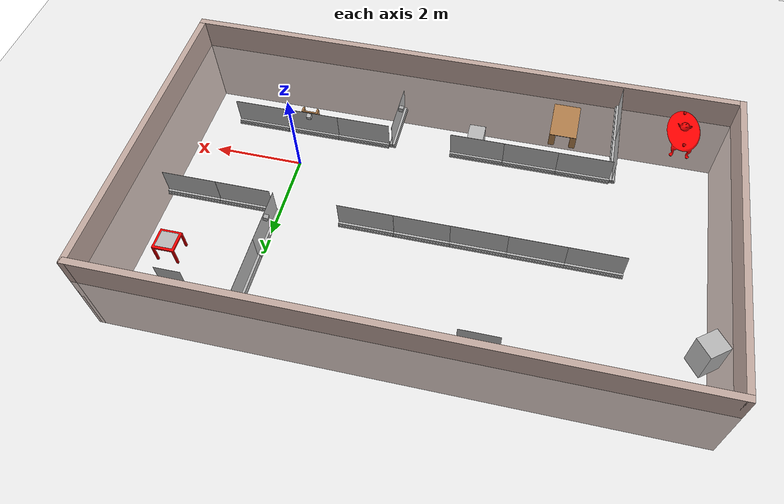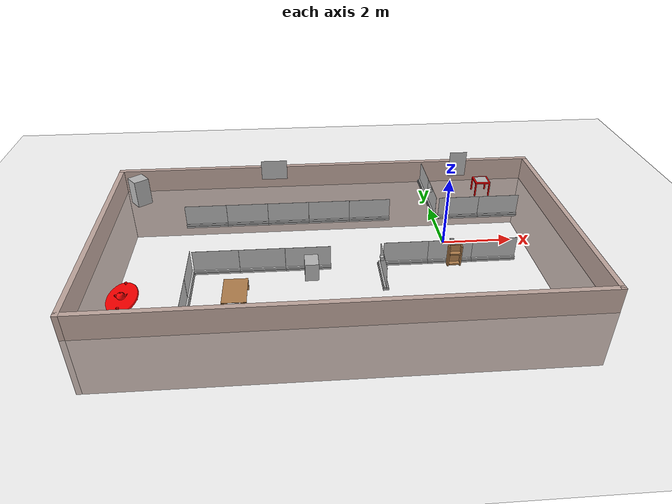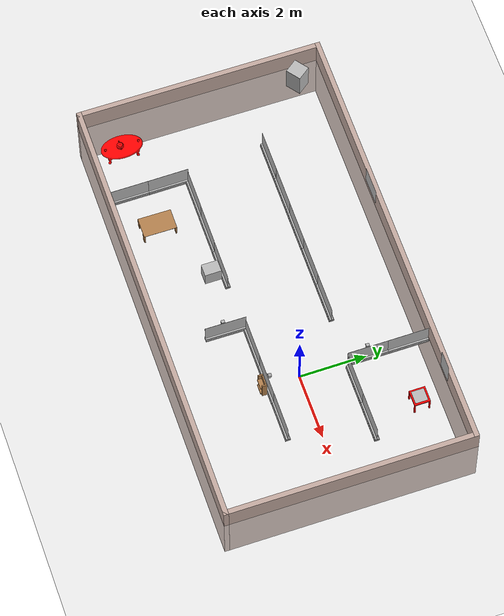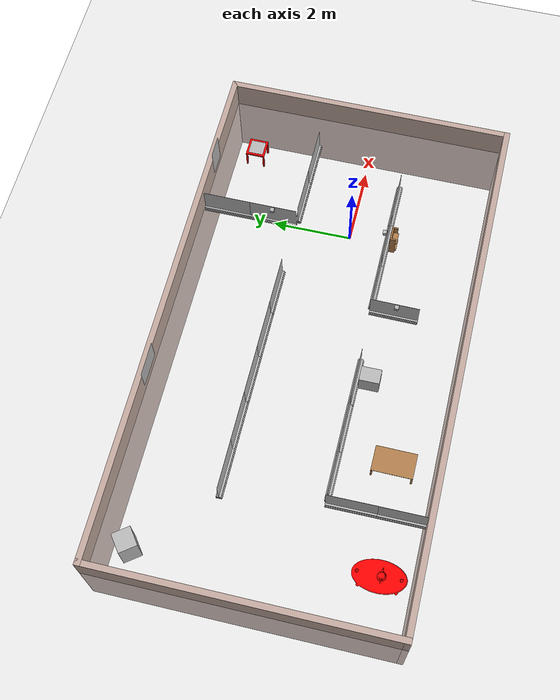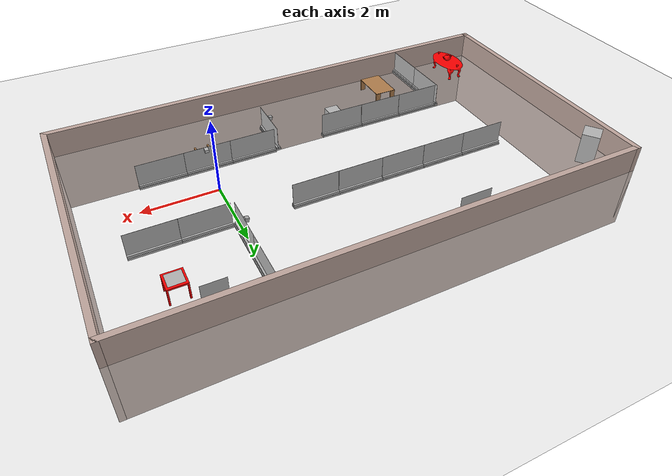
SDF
<sdf version="1.5">
 <world name="default">
  <scene>
   <sky><clouds><speed>12</speed></clouds></sky>
   <ambient>0.4 0.4 0.4 1</ambient>
   <background>0.7 0.7 0.7 1</background>
   <shadows>1</shadows>
  </scene>
  <model name="ground_plane">
   <pose>4 0 0 0 -0 0</pose>
   <static>1</static>
   <link name="link">
    <collision name="collision">
     <geometry><plane><normal>0 0 1</normal><size>100 100</size></plane></geometry>
     <surface><friction><ode><mu>100</mu><mu2>50</mu2></ode></friction></surface>
    </collision>
    <visual name="visual">
     <cast_shadows>0</cast_shadows>
     <geometry><plane><normal>0 0 1</normal><size>100 100</size></plane></geometry>
     <material>
      <script><uri>file://media/materials/scripts/gazebo.material</uri><name>Gazebo/Grey</name></script>
     </material>
    </visual>
    <velocity_decay><linear>0</linear><angular>0</angular></velocity_decay>
   </link>
  </model>
  <physics name="default_physics" default="0" type="ode">
   <max_step_size>0.001</max_step_size>
   <real_time_factor>1</real_time_factor>
   <real_time_update_rate>1000</real_time_update_rate>
   <gravity>0 0 -9.8</gravity>
   <magnetic_field>5.5645e-06 2.28758e-05 -4.23884e-05</magnetic_field>
  </physics>
  <scene><ambient>0.4 0.4 0.4 1</ambient><background>0.7 0.7 0.7 1</background><shadows>1</shadows></scene>
  <spherical_coordinates>
   <surface_model>EARTH_WGS84</surface_model>
   <latitude_deg>0</latitude_deg>
   <longitude_deg>0</longitude_deg>
   <elevation>0</elevation>
   <heading_deg>0</heading_deg>
  </spherical_coordinates>
  <model name="building_template_model">
   <static>1</static>
   <link name="__default__"><velocity_decay><linear>0</linear><angular>0</angular></velocity_decay></link>
  </model>
  <model name="fleming_boundaries">
   <pose>-3.08953 0.277486 -1.78694 0 -0 0</pose>
   <link name="Wall_6">
    <collision name="Wall_6_Collision">
     <geometry><box><size>13.5 0.15 2.5</size></box></geometry>
     <pose>0 0 1.25 0 -0 0</pose>
    </collision>
    <visual name="Wall_6_Visual">
     <pose>0 0 1.25 0 -0 0</pose>
     <geometry><box><size>13.5 0.15 2.5</size></box></geometry>
     <material>
      <script><uri>file://media/materials/scripts/gazebo.material</uri><name>Gazebo/Grey</name></script>
      <ambient>0.760784 0.662745 0.627451 1</ambient>
     </material>
    </visual>
    <pose>0 3.675 0 0 -0 0</pose>
   </link>
   <link name="Wall_7">
    <collision name="Wall_7_Collision">
     <geometry><box><size>7.5 0.15 2.5</size></box></geometry>
     <pose>0 0 1.25 0 -0 0</pose>
    </collision>
    <visual name="Wall_7_Visual">
     <pose>0 0 1.25 0 -0 0</pose>
     <geometry><box><size>7.5 0.15 2.5</size></box></geometry>
     <material>
      <script><uri>file://media/materials/scripts/gazebo.material</uri><name>Gazebo/Grey</name></script>
      <ambient>0.760784 0.662745 0.627451 1</ambient>
     </material>
    </visual>
    <pose>6.675 -0 0 0 0 -1.5708</pose>
   </link>
   <link name="Wall_8">
    <collision name="Wall_8_Collision">
     <geometry><box><size>13.5 0.15 2.5</size></box></geometry>
     <pose>0 0 1.25 0 -0 0</pose>
    </collision>
    <visual name="Wall_8_Visual">
     <pose>0 0 1.25 0 -0 0</pose>
     <geometry><box><size>13.5 0.15 2.5</size></box></geometry>
     <material>
      <script><uri>file://media/materials/scripts/gazebo.material</uri><name>Gazebo/Grey</name></script>
      <ambient>0.760784 0.662745 0.627451 1</ambient>
     </material>
    </visual>
    <pose>0 -3.675 0 0 -0 3.14159</pose>
   </link>
   <link name="Wall_9">
    <collision name="Wall_9_Collision">
     <geometry><box><size>7.5 0.15 2.5</size></box></geometry>
     <pose>0 0 1.25 0 -0 0</pose>
    </collision>
    <visual name="Wall_9_Visual">
     <pose>0 0 1.25 0 -0 0</pose>
     <geometry><box><size>7.5 0.15 2.5</size></box></geometry>
     <material>
      <script><uri>file://media/materials/scripts/gazebo.material</uri><name>Gazebo/Grey</name></script>
      <ambient>0.760784 0.662745 0.627451 1</ambient>
     </material>
    </visual>
    <pose>-6.675 -0 0 0 -0 1.5708</pose>
   </link>
   <static>1</static>
  </model>
  <model name="fleming_wall no plugin">
   <static>1</static>
   <link name="wall">
    <pose>0 0 0.0254 0 -0 0</pose>
    <visual name="base_visual">
     <geometry><box><size>1.2192 0.1524 0.0508</size></box></geometry>
     <material>
      <script>
       <uri>model://fleming_wall/materials/scripts</uri>
       <uri>model://fleming_wall/materials/textures</uri>
       <name>FlemingWall/Image</name>
      </script>
     </material>
    </visual>
    <visual name="front_strut_visual">
     <pose>0 0.028575 0.0508 0 -0 0</pose>
     <geometry><box><size>1.2192 0.0508 0.0508</size></box></geometry>
     <material>
      <script>
       <uri>model://fleming_wall/materials/scripts</uri>
       <uri>model://fleming_wall/materials/textures</uri>
       <name>FlemingWall/Image</name>
      </script>
     </material>
    </visual>
    <visual name="back_strut_visual">
     <pose>0 -0.028575 0.0508 0 -0 0</pose>
     <geometry><box><size>1.2192 0.0508 0.0508</size></box></geometry>
     <material>
      <script>
       <uri>model://fleming_wall/materials/scripts</uri>
       <uri>model://fleming_wall/materials/textures</uri>
       <name>FlemingWall/Image</name>
      </script>
     </material>
    </visual>
    <visual name="panel_visual">
     <pose>0 0 0.3556 0 -0 0</pose>
     <geometry><box><size>1.2192 0.003175 0.6096</size></box></geometry>
     <material>
      <script>
       <uri>model://fleming_wall/materials/scripts</uri>
       <uri>model://fleming_wall/materials/textures</uri>
       <name>FlemingWall/Image</name>
      </script>
     </material>
    </visual>
   </link>
   <pose>0.756109 1.40379 0 0 -0 0</pose>
  </model>
  <model name="fleming_wall no plugin_0">
   <static>1</static>
   <link name="wall">
    <pose>0 0 0.0254 0 -0 0</pose>
    <visual name="base_visual">
     <geometry><box><size>1.2192 0.1524 0.0508</size></box></geometry>
     <material>
      <script>
       <uri>model://fleming_wall/materials/scripts</uri>
       <uri>model://fleming_wall/materials/textures</uri>
       <name>FlemingWall/Image</name>
      </script>
     </material>
    </visual>
    <visual name="front_strut_visual">
     <pose>0 0.028575 0.0508 0 -0 0</pose>
     <geometry><box><size>1.2192 0.0508 0.0508</size></box></geometry>
     <material>
      <script>
       <uri>model://fleming_wall/materials/scripts</uri>
       <uri>model://fleming_wall/materials/textures</uri>
       <name>FlemingWall/Image</name>
      </script>
     </material>
    </visual>
    <visual name="back_strut_visual">
     <pose>0 -0.028575 0.0508 0 -0 0</pose>
     <geometry><box><size>1.2192 0.0508 0.0508</size></box></geometry>
     <material>
      <script>
       <uri>model://fleming_wall/materials/scripts</uri>
       <uri>model://fleming_wall/materials/textures</uri>
       <name>FlemingWall/Image</name>
      </script>
     </material>
    </visual>
    <visual name="panel_visual">
     <pose>0 0 0.3556 0 -0 0</pose>
     <geometry><box><size>1.2192 0.003175 0.6096</size></box></geometry>
     <material>
      <script>
       <uri>model://fleming_wall/materials/scripts</uri>
       <uri>model://fleming_wall/materials/textures</uri>
       <name>FlemingWall/Image</name>
      </script>
     </material>
    </visual>
   </link>
   <pose>1.97684 1.40351 0 0 -0 0</pose>
  </model>
  <model name="fleming_wall no plugin_1">
   <static>1</static>
   <link name="wall">
    <pose>0 0 0.0254 0 -0 0</pose>
    <visual name="base_visual">
     <geometry><box><size>1.2192 0.1524 0.0508</size></box></geometry>
     <material>
      <script>
       <uri>model://fleming_wall/materials/scripts</uri>
       <uri>model://fleming_wall/materials/textures</uri>
       <name>FlemingWall/Image</name>
      </script>
     </material>
    </visual>
    <visual name="front_strut_visual">
     <pose>0 0.028575 0.0508 0 -0 0</pose>
     <geometry><box><size>1.2192 0.0508 0.0508</size></box></geometry>
     <material>
      <script>
       <uri>model://fleming_wall/materials/scripts</uri>
       <uri>model://fleming_wall/materials/textures</uri>
       <name>FlemingWall/Image</name>
      </script>
     </material>
    </visual>
    <visual name="back_strut_visual">
     <pose>0 -0.028575 0.0508 0 -0 0</pose>
     <geometry><box><size>1.2192 0.0508 0.0508</size></box></geometry>
     <material>
      <script>
       <uri>model://fleming_wall/materials/scripts</uri>
       <uri>model://fleming_wall/materials/textures</uri>
       <name>FlemingWall/Image</name>
      </script>
     </material>
    </visual>
    <visual name="panel_visual">
     <pose>0 0 0.3556 0 -0 0</pose>
     <geometry><box><size>1.2192 0.003175 0.6096</size></box></geometry>
     <material>
      <script>
       <uri>model://fleming_wall/materials/scripts</uri>
       <uri>model://fleming_wall/materials/textures</uri>
       <name>FlemingWall/Image</name>
      </script>
     </material>
    </visual>
   </link>
   <pose>0.05822 2.02824 0 0 0 -1.57061</pose>
  </model>
  <model name="fleming_wall no plugin_2">
   <static>1</static>
   <link name="wall">
    <pose>0 0 0.0254 0 -0 0</pose>
    <visual name="base_visual">
     <geometry><box><size>1.2192 0.1524 0.0508</size></box></geometry>
     <material>
      <script>
       <uri>model://fleming_wall/materials/scripts</uri>
       <uri>model://fleming_wall/materials/textures</uri>
       <name>FlemingWall/Image</name>
      </script>
     </material>
    </visual>
    <visual name="front_strut_visual">
     <pose>0 0.028575 0.0508 0 -0 0</pose>
     <geometry><box><size>1.2192 0.0508 0.0508</size></box></geometry>
     <material>
      <script>
       <uri>model://fleming_wall/materials/scripts</uri>
       <uri>model://fleming_wall/materials/textures</uri>
       <name>FlemingWall/Image</name>
      </script>
     </material>
    </visual>
    <visual name="back_strut_visual">
     <pose>0 -0.028575 0.0508 0 -0 0</pose>
     <geometry><box><size>1.2192 0.0508 0.0508</size></box></geometry>
     <material>
      <script>
       <uri>model://fleming_wall/materials/scripts</uri>
       <uri>model://fleming_wall/materials/textures</uri>
       <name>FlemingWall/Image</name>
      </script>
     </material>
    </visual>
    <visual name="panel_visual">
     <pose>0 0 0.3556 0 -0 0</pose>
     <geometry><box><size>1.2192 0.003175 0.6096</size></box></geometry>
     <material>
      <script>
       <uri>model://fleming_wall/materials/scripts</uri>
       <uri>model://fleming_wall/materials/textures</uri>
       <name>FlemingWall/Image</name>
      </script>
     </material>
    </visual>
   </link>
   <pose>0.057185 3.23446 0 0 0 -1.56878</pose>
  </model>
  <model name="fleming_wall no plugin_3">
   <static>1</static>
   <link name="wall">
    <pose>0 0 0.0254 0 -0 0</pose>
    <visual name="base_visual">
     <geometry><box><size>1.2192 0.1524 0.0508</size></box></geometry>
     <material>
      <script>
       <uri>model://fleming_wall/materials/scripts</uri>
       <uri>model://fleming_wall/materials/textures</uri>
       <name>FlemingWall/Image</name>
      </script>
     </material>
    </visual>
    <visual name="front_strut_visual">
     <pose>0 0.028575 0.0508 0 -0 0</pose>
     <geometry><box><size>1.2192 0.0508 0.0508</size></box></geometry>
     <material>
      <script>
       <uri>model://fleming_wall/materials/scripts</uri>
       <uri>model://fleming_wall/materials/textures</uri>
       <name>FlemingWall/Image</name>
      </script>
     </material>
    </visual>
    <visual name="back_strut_visual">
     <pose>0 -0.028575 0.0508 0 -0 0</pose>
     <geometry><box><size>1.2192 0.0508 0.0508</size></box></geometry>
     <material>
      <script>
       <uri>model://fleming_wall/materials/scripts</uri>
       <uri>model://fleming_wall/materials/textures</uri>
       <name>FlemingWall/Image</name>
      </script>
     </material>
    </visual>
    <visual name="panel_visual">
     <pose>0 0 0.3556 0 -0 0</pose>
     <geometry><box><size>1.2192 0.003175 0.6096</size></box></geometry>
     <material>
      <script>
       <uri>model://fleming_wall/materials/scripts</uri>
       <uri>model://fleming_wall/materials/textures</uri>
       <name>FlemingWall/Image</name>
      </script>
     </material>
    </visual>
   </link>
   <pose>-1.9709 1.44274 0 0 -0 0</pose>
  </model>
  <light name="sun" type="directional">
   <pose>-1 0 10 0 -0 0</pose>
   <diffuse>0.8 0.8 0.8 1</diffuse>
   <specular>0.2 0.2 0.2 1</specular>
   <attenuation>
    <range>1000</range>
    <constant>0.9</constant>
    <linear>0.01</linear>
    <quadratic>0.001</quadratic>
   </attenuation>
   <direction>-0.5 0.1 -0.9</direction>
  </light>
  <model name="fleming_wall no plugin_4">
   <static>1</static>
   <link name="wall">
    <pose>0 0 0.0254 0 -0 0</pose>
    <visual name="base_visual">
     <geometry><box><size>1.2192 0.1524 0.0508</size></box></geometry>
     <material>
      <script>
       <uri>model://fleming_wall/materials/scripts</uri>
       <uri>model://fleming_wall/materials/textures</uri>
       <name>FlemingWall/Image</name>
      </script>
     </material>
    </visual>
    <visual name="front_strut_visual">
     <pose>0 0.028575 0.0508 0 -0 0</pose>
     <geometry><box><size>1.2192 0.0508 0.0508</size></box></geometry>
     <material>
      <script>
       <uri>model://fleming_wall/materials/scripts</uri>
       <uri>model://fleming_wall/materials/textures</uri>
       <name>FlemingWall/Image</name>
      </script>
     </material>
    </visual>
    <visual name="back_strut_visual">
     <pose>0 -0.028575 0.0508 0 -0 0</pose>
     <geometry><box><size>1.2192 0.0508 0.0508</size></box></geometry>
     <material>
      <script>
       <uri>model://fleming_wall/materials/scripts</uri>
       <uri>model://fleming_wall/materials/textures</uri>
       <name>FlemingWall/Image</name>
      </script>
     </material>
    </visual>
    <visual name="panel_visual">
     <pose>0 0 0.3556 0 -0 0</pose>
     <geometry><box><size>1.2192 0.003175 0.6096</size></box></geometry>
     <material>
      <script>
       <uri>model://fleming_wall/materials/scripts</uri>
       <uri>model://fleming_wall/materials/textures</uri>
       <name>FlemingWall/Image</name>
      </script>
     </material>
    </visual>
   </link>
   <pose>-3.19522 1.44325 0 0 -0 0</pose>
  </model>
  <model name="fleming_wall no plugin_5">
   <static>1</static>
   <link name="wall">
    <pose>0 0 0.0254 0 -0 0</pose>
    <visual name="base_visual">
     <geometry><box><size>1.2192 0.1524 0.0508</size></box></geometry>
     <material>
      <script>
       <uri>model://fleming_wall/materials/scripts</uri>
       <uri>model://fleming_wall/materials/textures</uri>
       <name>FlemingWall/Image</name>
      </script>
     </material>
    </visual>
    <visual name="front_strut_visual">
     <pose>0 0.028575 0.0508 0 -0 0</pose>
     <geometry><box><size>1.2192 0.0508 0.0508</size></box></geometry>
     <material>
      <script>
       <uri>model://fleming_wall/materials/scripts</uri>
       <uri>model://fleming_wall/materials/textures</uri>
       <name>FlemingWall/Image</name>
      </script>
     </material>
    </visual>
    <visual name="back_strut_visual">
     <pose>0 -0.028575 0.0508 0 -0 0</pose>
     <geometry><box><size>1.2192 0.0508 0.0508</size></box></geometry>
     <material>
      <script>
       <uri>model://fleming_wall/materials/scripts</uri>
       <uri>model://fleming_wall/materials/textures</uri>
       <name>FlemingWall/Image</name>
      </script>
     </material>
    </visual>
    <visual name="panel_visual">
     <pose>0 0 0.3556 0 -0 0</pose>
     <geometry><box><size>1.2192 0.003175 0.6096</size></box></geometry>
     <material>
      <script>
       <uri>model://fleming_wall/materials/scripts</uri>
       <uri>model://fleming_wall/materials/textures</uri>
       <name>FlemingWall/Image</name>
      </script>
     </material>
    </visual>
   </link>
   <pose>-4.41726 1.44176 0 0 -0 0</pose>
  </model>
  <model name="fleming_wall no plugin_6">
   <static>1</static>
   <link name="wall">
    <pose>0 0 0.0254 0 -0 0</pose>
    <visual name="base_visual">
     <geometry><box><size>1.2192 0.1524 0.0508</size></box></geometry>
     <material>
      <script>
       <uri>model://fleming_wall/materials/scripts</uri>
       <uri>model://fleming_wall/materials/textures</uri>
       <name>FlemingWall/Image</name>
      </script>
     </material>
    </visual>
    <visual name="front_strut_visual">
     <pose>0 0.028575 0.0508 0 -0 0</pose>
     <geometry><box><size>1.2192 0.0508 0.0508</size></box></geometry>
     <material>
      <script>
       <uri>model://fleming_wall/materials/scripts</uri>
       <uri>model://fleming_wall/materials/textures</uri>
       <name>FlemingWall/Image</name>
      </script>
     </material>
    </visual>
    <visual name="back_strut_visual">
     <pose>0 -0.028575 0.0508 0 -0 0</pose>
     <geometry><box><size>1.2192 0.0508 0.0508</size></box></geometry>
     <material>
      <script>
       <uri>model://fleming_wall/materials/scripts</uri>
       <uri>model://fleming_wall/materials/textures</uri>
       <name>FlemingWall/Image</name>
      </script>
     </material>
    </visual>
    <visual name="panel_visual">
     <pose>0 0 0.3556 0 -0 0</pose>
     <geometry><box><size>1.2192 0.003175 0.6096</size></box></geometry>
     <material>
      <script>
       <uri>model://fleming_wall/materials/scripts</uri>
       <uri>model://fleming_wall/materials/textures</uri>
       <name>FlemingWall/Image</name>
      </script>
     </material>
    </visual>
   </link>
   <pose>-5.63749 1.44318 0 0 -0 0</pose>
  </model>
  <model name="fleming_wall no plugin_7">
   <static>1</static>
   <link name="wall">
    <pose>0 0 0.0254 0 -0 0</pose>
    <visual name="base_visual">
     <geometry><box><size>1.2192 0.1524 0.0508</size></box></geometry>
     <material>
      <script>
       <uri>model://fleming_wall/materials/scripts</uri>
       <uri>model://fleming_wall/materials/textures</uri>
       <name>FlemingWall/Image</name>
      </script>
     </material>
    </visual>
    <visual name="front_strut_visual">
     <pose>0 0.028575 0.0508 0 -0 0</pose>
     <geometry><box><size>1.2192 0.0508 0.0508</size></box></geometry>
     <material>
      <script>
       <uri>model://fleming_wall/materials/scripts</uri>
       <uri>model://fleming_wall/materials/textures</uri>
       <name>FlemingWall/Image</name>
      </script>
     </material>
    </visual>
    <visual name="back_strut_visual">
     <pose>0 -0.028575 0.0508 0 -0 0</pose>
     <geometry><box><size>1.2192 0.0508 0.0508</size></box></geometry>
     <material>
      <script>
       <uri>model://fleming_wall/materials/scripts</uri>
       <uri>model://fleming_wall/materials/textures</uri>
       <name>FlemingWall/Image</name>
      </script>
     </material>
    </visual>
    <visual name="panel_visual">
     <pose>0 0 0.3556 0 -0 0</pose>
     <geometry><box><size>1.2192 0.003175 0.6096</size></box></geometry>
     <material>
      <script>
       <uri>model://fleming_wall/materials/scripts</uri>
       <uri>model://fleming_wall/materials/textures</uri>
       <name>FlemingWall/Image</name>
      </script>
     </material>
    </visual>
   </link>
   <pose>-6.85264 1.44195 0 0 -0 0</pose>
  </model>
  <model name="fleming_wall no plugin_8">
   <static>1</static>
   <link name="wall">
    <pose>0 0 0.0254 0 -0 0</pose>
    <visual name="base_visual">
     <geometry><box><size>1.2192 0.1524 0.0508</size></box></geometry>
     <material>
      <script>
       <uri>model://fleming_wall/materials/scripts</uri>
       <uri>model://fleming_wall/materials/textures</uri>
       <name>FlemingWall/Image</name>
      </script>
     </material>
    </visual>
    <visual name="front_strut_visual">
     <pose>0 0.028575 0.0508 0 -0 0</pose>
     <geometry><box><size>1.2192 0.0508 0.0508</size></box></geometry>
     <material>
      <script>
       <uri>model://fleming_wall/materials/scripts</uri>
       <uri>model://fleming_wall/materials/textures</uri>
       <name>FlemingWall/Image</name>
      </script>
     </material>
    </visual>
    <visual name="back_strut_visual">
     <pose>0 -0.028575 0.0508 0 -0 0</pose>
     <geometry><box><size>1.2192 0.0508 0.0508</size></box></geometry>
     <material>
      <script>
       <uri>model://fleming_wall/materials/scripts</uri>
       <uri>model://fleming_wall/materials/textures</uri>
       <name>FlemingWall/Image</name>
      </script>
     </material>
    </visual>
    <visual name="panel_visual">
     <pose>0 0 0.3556 0 -0 0</pose>
     <geometry><box><size>1.2192 0.003175 0.6096</size></box></geometry>
     <material>
      <script>
       <uri>model://fleming_wall/materials/scripts</uri>
       <uri>model://fleming_wall/materials/textures</uri>
       <name>FlemingWall/Image</name>
      </script>
     </material>
    </visual>
   </link>
   <pose>-3.92232 -1.00874 0 0 -0 0</pose>
  </model>
  <model name="fleming_wall no plugin_9">
   <static>1</static>
   <link name="wall">
    <pose>0 0 0.0254 0 -0 0</pose>
    <visual name="base_visual">
     <geometry><box><size>1.2192 0.1524 0.0508</size></box></geometry>
     <material>
      <script>
       <uri>model://fleming_wall/materials/scripts</uri>
       <uri>model://fleming_wall/materials/textures</uri>
       <name>FlemingWall/Image</name>
      </script>
     </material>
    </visual>
    <visual name="front_strut_visual">
     <pose>0 0.028575 0.0508 0 -0 0</pose>
     <geometry><box><size>1.2192 0.0508 0.0508</size></box></geometry>
     <material>
      <script>
       <uri>model://fleming_wall/materials/scripts</uri>
       <uri>model://fleming_wall/materials/textures</uri>
       <name>FlemingWall/Image</name>
      </script>
     </material>
    </visual>
    <visual name="back_strut_visual">
     <pose>0 -0.028575 0.0508 0 -0 0</pose>
     <geometry><box><size>1.2192 0.0508 0.0508</size></box></geometry>
     <material>
      <script>
       <uri>model://fleming_wall/materials/scripts</uri>
       <uri>model://fleming_wall/materials/textures</uri>
       <name>FlemingWall/Image</name>
      </script>
     </material>
    </visual>
    <visual name="panel_visual">
     <pose>0 0 0.3556 0 -0 0</pose>
     <geometry><box><size>1.2192 0.003175 0.6096</size></box></geometry>
     <material>
      <script>
       <uri>model://fleming_wall/materials/scripts</uri>
       <uri>model://fleming_wall/materials/textures</uri>
       <name>FlemingWall/Image</name>
      </script>
     </material>
    </visual>
   </link>
   <pose>-5.14751 -1.00578 0 0 -0 0</pose>
  </model>
  <model name="fleming_wall no plugin_10">
   <static>1</static>
   <link name="wall">
    <pose>0 0 0.0254 0 -0 0</pose>
    <visual name="base_visual">
     <geometry><box><size>1.2192 0.1524 0.0508</size></box></geometry>
     <material>
      <script>
       <uri>model://fleming_wall/materials/scripts</uri>
       <uri>model://fleming_wall/materials/textures</uri>
       <name>FlemingWall/Image</name>
      </script>
     </material>
    </visual>
    <visual name="front_strut_visual">
     <pose>0 0.028575 0.0508 0 -0 0</pose>
     <geometry><box><size>1.2192 0.0508 0.0508</size></box></geometry>
     <material>
      <script>
       <uri>model://fleming_wall/materials/scripts</uri>
       <uri>model://fleming_wall/materials/textures</uri>
       <name>FlemingWall/Image</name>
      </script>
     </material>
    </visual>
    <visual name="back_strut_visual">
     <pose>0 -0.028575 0.0508 0 -0 0</pose>
     <geometry><box><size>1.2192 0.0508 0.0508</size></box></geometry>
     <material>
      <script>
       <uri>model://fleming_wall/materials/scripts</uri>
       <uri>model://fleming_wall/materials/textures</uri>
       <name>FlemingWall/Image</name>
      </script>
     </material>
    </visual>
    <visual name="panel_visual">
     <pose>0 0 0.3556 0 -0 0</pose>
     <geometry><box><size>1.2192 0.003175 0.6096</size></box></geometry>
     <material>
      <script>
       <uri>model://fleming_wall/materials/scripts</uri>
       <uri>model://fleming_wall/materials/textures</uri>
       <name>FlemingWall/Image</name>
      </script>
     </material>
    </visual>
   </link>
   <pose>-6.36793 -1.00393 0 0 -0 0</pose>
  </model>
  <model name="fleming_wall no plugin_11">
   <static>1</static>
   <link name="wall">
    <pose>0 0 0.0254 0 -0 0</pose>
    <visual name="base_visual">
     <geometry><box><size>1.2192 0.1524 0.0508</size></box></geometry>
     <material>
      <script>
       <uri>model://fleming_wall/materials/scripts</uri>
       <uri>model://fleming_wall/materials/textures</uri>
       <name>FlemingWall/Image</name>
      </script>
     </material>
    </visual>
    <visual name="front_strut_visual">
     <pose>0 0.028575 0.0508 0 -0 0</pose>
     <geometry><box><size>1.2192 0.0508 0.0508</size></box></geometry>
     <material>
      <script>
       <uri>model://fleming_wall/materials/scripts</uri>
       <uri>model://fleming_wall/materials/textures</uri>
       <name>FlemingWall/Image</name>
      </script>
     </material>
    </visual>
    <visual name="back_strut_visual">
     <pose>0 -0.028575 0.0508 0 -0 0</pose>
     <geometry><box><size>1.2192 0.0508 0.0508</size></box></geometry>
     <material>
      <script>
       <uri>model://fleming_wall/materials/scripts</uri>
       <uri>model://fleming_wall/materials/textures</uri>
       <name>FlemingWall/Image</name>
      </script>
     </material>
    </visual>
    <visual name="panel_visual">
     <pose>0 0 0.3556 0 -0 0</pose>
     <geometry><box><size>1.2192 0.003175 0.6096</size></box></geometry>
     <material>
      <script>
       <uri>model://fleming_wall/materials/scripts</uri>
       <uri>model://fleming_wall/materials/textures</uri>
       <name>FlemingWall/Image</name>
      </script>
     </material>
    </visual>
   </link>
   <pose>-7.02612 -1.57369 0 0 -0 1.57975</pose>
  </model>
  <model name="fleming_wall no plugin_12">
   <static>1</static>
   <link name="wall">
    <pose>0 0 0.0254 0 -0 0</pose>
    <visual name="base_visual">
     <geometry><box><size>1.2192 0.1524 0.0508</size></box></geometry>
     <material>
      <script>
       <uri>model://fleming_wall/materials/scripts</uri>
       <uri>model://fleming_wall/materials/textures</uri>
       <name>FlemingWall/Image</name>
      </script>
     </material>
    </visual>
    <visual name="front_strut_visual">
     <pose>0 0.028575 0.0508 0 -0 0</pose>
     <geometry><box><size>1.2192 0.0508 0.0508</size></box></geometry>
     <material>
      <script>
       <uri>model://fleming_wall/materials/scripts</uri>
       <uri>model://fleming_wall/materials/textures</uri>
       <name>FlemingWall/Image</name>
      </script>
     </material>
    </visual>
    <visual name="back_strut_visual">
     <pose>0 -0.028575 0.0508 0 -0 0</pose>
     <geometry><box><size>1.2192 0.0508 0.0508</size></box></geometry>
     <material>
      <script>
       <uri>model://fleming_wall/materials/scripts</uri>
       <uri>model://fleming_wall/materials/textures</uri>
       <name>FlemingWall/Image</name>
      </script>
     </material>
    </visual>
    <visual name="panel_visual">
     <pose>0 0 0.3556 0 -0 0</pose>
     <geometry><box><size>1.2192 0.003175 0.6096</size></box></geometry>
     <material>
      <script>
       <uri>model://fleming_wall/materials/scripts</uri>
       <uri>model://fleming_wall/materials/textures</uri>
       <name>FlemingWall/Image</name>
      </script>
     </material>
    </visual>
   </link>
   <pose>-7.01985 -2.79174 0 -2e-06 -0.00043 1.57537</pose>
  </model>
  <model name="fleming_wall no plugin_13">
   <static>1</static>
   <link name="wall">
    <pose>0 0 0.0254 0 -0 0</pose>
    <visual name="base_visual">
     <geometry><box><size>1.2192 0.1524 0.0508</size></box></geometry>
     <material>
      <script>
       <uri>model://fleming_wall/materials/scripts</uri>
       <uri>model://fleming_wall/materials/textures</uri>
       <name>FlemingWall/Image</name>
      </script>
     </material>
    </visual>
    <visual name="front_strut_visual">
     <pose>0 0.028575 0.0508 0 -0 0</pose>
     <geometry><box><size>1.2192 0.0508 0.0508</size></box></geometry>
     <material>
      <script>
       <uri>model://fleming_wall/materials/scripts</uri>
       <uri>model://fleming_wall/materials/textures</uri>
       <name>FlemingWall/Image</name>
      </script>
     </material>
    </visual>
    <visual name="back_strut_visual">
     <pose>0 -0.028575 0.0508 0 -0 0</pose>
     <geometry><box><size>1.2192 0.0508 0.0508</size></box></geometry>
     <material>
      <script>
       <uri>model://fleming_wall/materials/scripts</uri>
       <uri>model://fleming_wall/materials/textures</uri>
       <name>FlemingWall/Image</name>
      </script>
     </material>
    </visual>
    <visual name="panel_visual">
     <pose>0 0 0.3556 0 -0 0</pose>
     <geometry><box><size>1.2192 0.003175 0.6096</size></box></geometry>
     <material>
      <script>
       <uri>model://fleming_wall/materials/scripts</uri>
       <uri>model://fleming_wall/materials/textures</uri>
       <name>FlemingWall/Image</name>
      </script>
     </material>
    </visual>
   </link>
   <pose>1.16732 -0.95155 0 0 -0 0</pose>
  </model>
  <model name="fleming_wall no plugin_14">
   <static>1</static>
   <link name="wall">
    <pose>0 0 0.0254 0 -0 0</pose>
    <visual name="base_visual">
     <geometry><box><size>1.2192 0.1524 0.0508</size></box></geometry>
     <material>
      <script>
       <uri>model://fleming_wall/materials/scripts</uri>
       <uri>model://fleming_wall/materials/textures</uri>
       <name>FlemingWall/Image</name>
      </script>
     </material>
    </visual>
    <visual name="front_strut_visual">
     <pose>0 0.028575 0.0508 0 -0 0</pose>
     <geometry><box><size>1.2192 0.0508 0.0508</size></box></geometry>
     <material>
      <script>
       <uri>model://fleming_wall/materials/scripts</uri>
       <uri>model://fleming_wall/materials/textures</uri>
       <name>FlemingWall/Image</name>
      </script>
     </material>
    </visual>
    <visual name="back_strut_visual">
     <pose>0 -0.028575 0.0508 0 -0 0</pose>
     <geometry><box><size>1.2192 0.0508 0.0508</size></box></geometry>
     <material>
      <script>
       <uri>model://fleming_wall/materials/scripts</uri>
       <uri>model://fleming_wall/materials/textures</uri>
       <name>FlemingWall/Image</name>
      </script>
     </material>
    </visual>
    <visual name="panel_visual">
     <pose>0 0 0.3556 0 -0 0</pose>
     <geometry><box><size>1.2192 0.003175 0.6096</size></box></geometry>
     <material>
      <script>
       <uri>model://fleming_wall/materials/scripts</uri>
       <uri>model://fleming_wall/materials/textures</uri>
       <name>FlemingWall/Image</name>
      </script>
     </material>
    </visual>
   </link>
   <pose>-0.052009 -0.95515 0 0 -0 0</pose>
  </model>
  <model name="fleming_wall no plugin_15">
   <static>1</static>
   <link name="wall">
    <pose>0 0 0.0254 0 -0 0</pose>
    <visual name="base_visual">
     <geometry><box><size>1.2192 0.1524 0.0508</size></box></geometry>
     <material>
      <script>
       <uri>model://fleming_wall/materials/scripts</uri>
       <uri>model://fleming_wall/materials/textures</uri>
       <name>FlemingWall/Image</name>
      </script>
     </material>
    </visual>
    <visual name="front_strut_visual">
     <pose>0 0.028575 0.0508 0 -0 0</pose>
     <geometry><box><size>1.2192 0.0508 0.0508</size></box></geometry>
     <material>
      <script>
       <uri>model://fleming_wall/materials/scripts</uri>
       <uri>model://fleming_wall/materials/textures</uri>
       <name>FlemingWall/Image</name>
      </script>
     </material>
    </visual>
    <visual name="back_strut_visual">
     <pose>0 -0.028575 0.0508 0 -0 0</pose>
     <geometry><box><size>1.2192 0.0508 0.0508</size></box></geometry>
     <material>
      <script>
       <uri>model://fleming_wall/materials/scripts</uri>
       <uri>model://fleming_wall/materials/textures</uri>
       <name>FlemingWall/Image</name>
      </script>
     </material>
    </visual>
    <visual name="panel_visual">
     <pose>0 0 0.3556 0 -0 0</pose>
     <geometry><box><size>1.2192 0.003175 0.6096</size></box></geometry>
     <material>
      <script>
       <uri>model://fleming_wall/materials/scripts</uri>
       <uri>model://fleming_wall/materials/textures</uri>
       <name>FlemingWall/Image</name>
      </script>
     </material>
    </visual>
   </link>
   <pose>-1.26896 -0.95628 0 0 -0 0</pose>
  </model>
  <model name="fleming_wall no plugin_16">
   <static>1</static>
   <link name="wall">
    <pose>0 0 0.0254 0 -0 0</pose>
    <visual name="base_visual">
     <geometry><box><size>1.2192 0.1524 0.0508</size></box></geometry>
     <material>
      <script>
       <uri>model://fleming_wall/materials/scripts</uri>
       <uri>model://fleming_wall/materials/textures</uri>
       <name>FlemingWall/Image</name>
      </script>
     </material>
    </visual>
    <visual name="front_strut_visual">
     <pose>0 0.028575 0.0508 0 -0 0</pose>
     <geometry><box><size>1.2192 0.0508 0.0508</size></box></geometry>
     <material>
      <script>
       <uri>model://fleming_wall/materials/scripts</uri>
       <uri>model://fleming_wall/materials/textures</uri>
       <name>FlemingWall/Image</name>
      </script>
     </material>
    </visual>
    <visual name="back_strut_visual">
     <pose>0 -0.028575 0.0508 0 -0 0</pose>
     <geometry><box><size>1.2192 0.0508 0.0508</size></box></geometry>
     <material>
      <script>
       <uri>model://fleming_wall/materials/scripts</uri>
       <uri>model://fleming_wall/materials/textures</uri>
       <name>FlemingWall/Image</name>
      </script>
     </material>
    </visual>
    <visual name="panel_visual">
     <pose>0 0 0.3556 0 -0 0</pose>
     <geometry><box><size>1.2192 0.003175 0.6096</size></box></geometry>
     <material>
      <script>
       <uri>model://fleming_wall/materials/scripts</uri>
       <uri>model://fleming_wall/materials/textures</uri>
       <name>FlemingWall/Image</name>
      </script>
     </material>
    </visual>
   </link>
   <pose>-1.95967 -1.53558 0 0 -0 1.56489</pose>
  </model>
  <model name="security camera1">
   <static>1</static>
   <pose>-2.01951 -1.59112 0.636083 0 0.166559 -3.13771</pose>
   <link name="link">
    <inertial><mass>0.1</mass></inertial>
    <collision name="collision"><geometry><box><size>0.1 0.1 0.1</size></box></geometry></collision>
    <visual name="visual"><geometry><box><size>0.1 0.1 0.1</size></box></geometry></visual>
    <sensor name="camera" type="camera">
     <camera name="__default__">
      <horizontal_fov>1.047</horizontal_fov>
      <image><width>320</width><height>240</height></image>
      <clip><near>0.1</near><far>100</far></clip>
     </camera>
     <plugin name="security_camera1_controller" filename="libgazebo_ros_camera.so">
      <always_on>1</always_on>
      <update_rate>30</update_rate>
      <cameraName>security_camera1/camera</cameraName>
      <imageTopicName>image_raw</imageTopicName>
      <cameraInfoTopicName>camera_info</cameraInfoTopicName>
      <frameName>camera_link</frameName>
      <hackBaseline>0.07</hackBaseline>
      <distortionK1>0.0</distortionK1>
      <distortionK2>0.0</distortionK2>
      <distortionK3>0.0</distortionK3>
      <distortionT1>0.0</distortionT1>
      <distortionT2>0.0</distortionT2>
     </plugin>
     <visualize>0</visualize>
    </sensor>
   </link>
  </model>
  <model name="security camera2">
   <static>1</static>
   <pose>-0.004553 2.03092 0.631676 -2.21428e-19 0.203907 3.13201</pose>
   <link name="link">
    <inertial><mass>0.1</mass></inertial>
    <collision name="collision"><geometry><box><size>0.1 0.1 0.1</size></box></geometry></collision>
    <visual name="visual"><geometry><box><size>0.1 0.1 0.1</size></box></geometry></visual>
    <sensor name="camera" type="camera">
     <camera name="__default__">
      <horizontal_fov>1.047</horizontal_fov>
      <image><width>320</width><height>240</height></image>
      <clip><near>0.1</near><far>100</far></clip>
     </camera>
     <plugin name="security_camera2_controller" filename="libgazebo_ros_camera.so">
      <always_on>1</always_on>
      <update_rate>30</update_rate>
      <cameraName>security_camera2/camera</cameraName>
      <imageTopicName>image_raw</imageTopicName>
      <cameraInfoTopicName>camera_info</cameraInfoTopicName>
      <frameName>camera_link</frameName>
      <hackBaseline>0.07</hackBaseline>
      <distortionK1>0.0</distortionK1>
      <distortionK2>0.0</distortionK2>
      <distortionK3>0.0</distortionK3>
      <distortionT1>0.0</distortionT1>
      <distortionT2>0.0</distortionT2>
     </plugin>
     <visualize>0</visualize>
    </sensor>
   </link>
  </model>
  <model name="security camera3">
   <static>1</static>
   <pose>-0.011712 -0.892512 0.637329 1.43085e-17 0.245987 1.57569</pose>
   <link name="link">
    <inertial><mass>0.1</mass></inertial>
    <collision name="collision"><geometry><box><size>0.1 0.1 0.1</size></box></geometry></collision>
    <visual name="visual"><geometry><box><size>0.1 0.1 0.1</size></box></geometry></visual>
    <sensor name="camera" type="camera">
     <camera name="__default__">
      <horizontal_fov>1.047</horizontal_fov>
      <image><width>320</width><height>240</height></image>
      <clip><near>0.1</near><far>100</far></clip>
     </camera>
     <plugin name="security_camera3_controller" filename="libgazebo_ros_camera.so">
      <always_on>1</always_on>
      <update_rate>30</update_rate>
      <cameraName>security_camera3/camera</cameraName>
      <imageTopicName>image_raw</imageTopicName>
      <cameraInfoTopicName>camera_info</cameraInfoTopicName>
      <frameName>camera_link</frameName>
      <hackBaseline>0.07</hackBaseline>
      <distortionK1>0.0</distortionK1>
      <distortionK2>0.0</distortionK2>
      <distortionK3>0.0</distortionK3>
      <distortionT1>0.0</distortionT1>
      <distortionT2>0.0</distortionT2>
     </plugin>
     <visualize>0</visualize>
    </sensor>
   </link>
  </model>
  <model name="clue_fridge_noplugin">
   <static>1</static>
   <link name="fridge">
    <visual name="fridge_entire">
     <pose>0 0 0.425 0 -0 0</pose>
     <geometry><box><size>0.476 0.451 0.85</size></box></geometry>
     <material>
      <script>
       <uri>model://clue_fridge_noplugin/materials/scripts</uri>
       <uri>model://clue_fridge_noplugin/materials/textures</uri>
       <name>plastic</name>
      </script>
     </material>
    </visual>
   </link>
   <pose>-9.0802 3.07926 0 0 -0 0.646143</pose>
  </model>
  <model name="clue_bookcase_noplugin">
   <static>1</static>
   <link name="bookcase">
    <visual name="side_1">
     <pose>0 0 0.3 0 -0 0</pose>
     <geometry><box><size>0.14224 0.04094 0.60198</size></box></geometry>
     <material>
      <script>
       <uri>model://clue_bookcase_noplugin/materials/scripts</uri>
       <uri>model://clue_bookcase_noplugin/materials/textures</uri>
       <name>Wood</name>
      </script>
     </material>
    </visual>
    <visual name="side_2">
     <pose>-0 0.33655 0.3 0 -0 0</pose>
     <geometry><box><size>0.14224 0.04094 0.60198</size></box></geometry>
     <material>
      <script>
       <uri>model://clue_bookcase_noplugin/materials/scripts</uri>
       <uri>model://clue_bookcase_noplugin/materials/textures</uri>
       <name>Wood</name>
      </script>
     </material>
    </visual>
    <visual name="back">
     <pose>-0.05207 0.16827 0.325755 0 -0 0</pose>
     <geometry><box><size>0.0381 0.29845 0.55245</size></box></geometry>
     <material>
      <script>
       <uri>model://clue_bookcase_noplugin/materials/scripts</uri>
       <uri>model://clue_bookcase_noplugin/materials/textures</uri>
       <name>Wood</name>
      </script>
     </material>
    </visual>
    <visual name="shelf_1">
     <pose>0.0381 0.16827 0.06858 0 -0 0</pose>
     <geometry><box><size>0.13462 0.29845 0.0381</size></box></geometry>
     <material>
      <script>
       <uri>model://clue_bookcase_noplugin/materials/scripts</uri>
       <uri>model://clue_bookcase_noplugin/materials/textures</uri>
       <name>Wood</name>
      </script>
     </material>
    </visual>
    <visual name="shelf_2">
     <pose>0.0381 0.16827 0.38862 0 -0 0</pose>
     <geometry><box><size>0.13462 0.29845 0.0381</size></box></geometry>
     <material>
      <script>
       <uri>model://clue_bookcase_noplugin/materials/scripts</uri>
       <uri>model://clue_bookcase_noplugin/materials/textures</uri>
       <name>Wood</name>
      </script>
     </material>
    </visual>
   </link>
   <pose>-0.127297 -1.11462 0 0 0 -1.57451</pose>
  </model>
  <model name="clue_table_noplugin">
   <static>1</static>
   <link name="table">
    <visual name="table_top">
     <pose>0 0 0.34 0 -0 0</pose>
     <geometry><box><size>0.99 0.62 0.01</size></box></geometry>
     <material>
      <script>
       <uri>model://clue_table_noplugin/materials/scripts</uri>
       <uri>model://clue_table_noplugin/materials/textures</uri>
       <name>Wood</name>
      </script>
     </material>
    </visual>
    <visual name="front_left_leg">
     <pose>-0.475 0.24 0.17 0 -0 0</pose>
     <geometry><box><size>0.04 0.14 0.34</size></box></geometry>
     <material>
      <script>
       <uri>model://clue_table_noplugin/materials/scripts</uri>
       <uri>model://clue_table_noplugin/materials/textures</uri>
       <name>Wood</name>
      </script>
     </material>
    </visual>
    <visual name="front_right_leg">
     <pose>-0.475 -0.24 0.17 0 -0 0</pose>
     <geometry><box><size>0.04 0.14 0.34</size></box></geometry>
     <material>
      <script>
       <uri>model://clue_table_noplugin/materials/scripts</uri>
       <uri>model://clue_table_noplugin/materials/textures</uri>
       <name>Wood</name>
      </script>
     </material>
    </visual>
    <visual name="back_right_leg">
     <pose>0.475 0.24 0.17 0 -0 0</pose>
     <geometry><box><size>0.04 0.14 0.34</size></box></geometry>
     <material>
      <script>
       <uri>model://clue_table_noplugin/materials/scripts</uri>
       <uri>model://clue_table_noplugin/materials/textures</uri>
       <name>Wood</name>
      </script>
     </material>
    </visual>
    <visual name="back_left_leg">
     <pose>0.475 -0.24 0.17 0 -0 0</pose>
     <geometry><box><size>0.04 0.14 0.34</size></box></geometry>
     <material>
      <script>
       <uri>model://clue_table_noplugin/materials/scripts</uri>
       <uri>model://clue_table_noplugin/materials/textures</uri>
       <name>Wood</name>
      </script>
     </material>
    </visual>
   </link>
   <pose>-5.80216 -2.31243 0 0 -0 1.5656</pose>
  </model>
  <model name="clue_kitchen_poster_noplugin">
   <static>1</static>
   <link name="Poster">
    <visual name="posterEntire">
     <pose>0 0 0.325 0 -0 0</pose>
     <geometry><box><size>0.836 0.0001 0.65</size></box></geometry>
     <material>
      <script>
       <uri>model://clue_kitchen_poster_noplugin/materials/scripts</uri>
       <uri>model://clue_kitchen_poster_noplugin/materials/textures</uri>
       <name>paper</name>
      </script>
     </material>
    </visual>
   </link>
   <pose>-4.83837 3.85115 0.285367 0 -0 0</pose>
  </model>
  <model name="clue_game_table">
   <static>1</static>
   <link name="game_table">
    <visual name="visual">
     <geometry>
      <mesh><uri>model://clue_game_table/meshes/game_table.stl</uri><scale>0.02 0.02 0.02</scale></mesh>
     </geometry>
     <material>
      <ambient>0 0 0 0</ambient>
      <diffuse>1 0 0 1</diffuse>
      <specular>0.1 0.1 0.1 1</specular>
      <emissive>229 166 79 0</emissive>
     </material>
    </visual>
   </link>
   <pose>1.63418 3.1523 0.471539 -3.13896 0 0</pose>
  </model>
  <model name="clue_tea_pot">
   <static>1</static>
   <link name="tea_pot">
    <visual name="visual">
     <pose>-0.04334 0 0.084757 0 -0 0</pose>
     <geometry>
      <mesh><uri>model://clue_tea_pot/meshes/teapot.dae</uri><scale>0.007 0.007 0.007</scale></mesh>
     </geometry>
     <material>
      <ambient>0 0 0 0</ambient>
      <diffuse>1 0 0 1</diffuse>
      <specular>0.1 0.1 0.1 1</specular>
      <emissive>166 238 236 0</emissive>
     </material>
    </visual>
   </link>
   <pose>-8.45874 -2.47682 0.516058 1.57298 -0 0</pose>
  </model>
  <model name="clue_tea_cup">
   <static>1</static>
   <link name="tea_cup">
    <visual name="visual">
     <pose>-0.04334 0 0.084757 0 -0 0</pose>
     <geometry>
      <mesh><uri>model://clue_tea_cup/meshes/teaCup.stl</uri><scale>0.001 0.001 0.001</scale></mesh>
     </geometry>
     <material>
      <ambient>0 0 0 0</ambient>
      <diffuse>1 0 0 1</diffuse>
      <specular>0.1 0.1 0.1 1</specular>
      <emissive>166 238 236 0</emissive>
     </material>
    </visual>
   </link>
   <pose>-8.45393 -2.00842 0.371578 0 -0 0</pose>
  </model>
  <model name="clue_tea_cup_0">
   <static>1</static>
   <link name="tea_cup">
    <visual name="visual">
     <pose>-0.04334 0 0.084757 0 -0 0</pose>
     <geometry>
      <mesh><uri>model://clue_tea_cup/meshes/teaCup.stl</uri><scale>0.001 0.001 0.001</scale></mesh>
     </geometry>
     <material>
      <ambient>0 0 0 0</ambient>
      <diffuse>1 0 0 1</diffuse>
      <specular>0.1 0.1 0.1 1</specular>
      <emissive>166 238 236 0</emissive>
     </material>
    </visual>
   </link>
   <pose>-8.45193 -3.00934 0.372739 0 -0 0</pose>
  </model>
  <model name="clue_billard_poster_noplugin">
   <static>1</static>
   <link name="poster1">
    <visual name="poster_entire">
     <pose>0 0 0.42 0 -0 0</pose>
     <geometry><box><size>0.564 0.0001 0.84</size></box></geometry>
     <material>
      <script>
       <uri>model://clue_billard_poster_noplugin/materials/scripts</uri>
       <uri>model://clue_billard_poster_noplugin/materials/textures</uri>
       <name>poster</name>
      </script>
     </material>
    </visual>
   </link>
   <pose>1.30089 3.86386 0.178116 0 -0 0</pose>
  </model>
  <model name="clue_filing_cabinet">
   <static>1</static>
   <link name="filing">
    <visual name="filing_entire">
     <pose>0 0 0.251 0 -0 0</pose>
     <geometry><box><size>0.495 0.366 0.502</size></box></geometry>
     <material>
      <script>
       <uri>model://clue_filing_cabinet/materials/scripts</uri>
       <uri>model://clue_filing_cabinet/materials/textures</uri>
       <name>metal</name>
      </script>
     </material>
    </visual>
   </link>
   <pose>-3.84748 -1.33145 0 0 0 -1.56232</pose>
  </model>
  <model name="clue_checkers">
   <static>1</static>
   <link name="checkers">
    <visual name="checkersEntire">
     <pose>0 0 0.48 0 -0 0</pose>
     <geometry><box><size>0.381 0.381 0.0001</size></box></geometry>
     <material>
      <script>
       <uri>model://clue_checkers/materials/scripts</uri>
       <uri>model://clue_checkers/materials/textures</uri>
       <name>board</name>
      </script>
     </material>
    </visual>
   </link>
   <pose>1.87196 2.9098 0 0 -0 0</pose>
  </model>
  <model name="clue_dining_table_0">
   <static>1</static>
   <link name="oval_table">
    <visual name="visual">
     <geometry>
      <mesh><uri>model://clue_dining_table/meshes/diningTable.stl</uri><scale>0.025 0.025 0.025</scale></mesh>
     </geometry>
     <material>
      <ambient>0 0 0 0</ambient>
      <diffuse>1 0 0 1</diffuse>
      <specular>0.1 0.1 0.1 1</specular>
      <emissive>10 42 19 0</emissive>
     </material>
    </visual>
   </link>
   <pose>-8.49699 -2.51702 0.451263 3.14159 -0.002327 3.14159</pose>
  </model>
 </world>
</sdf>
